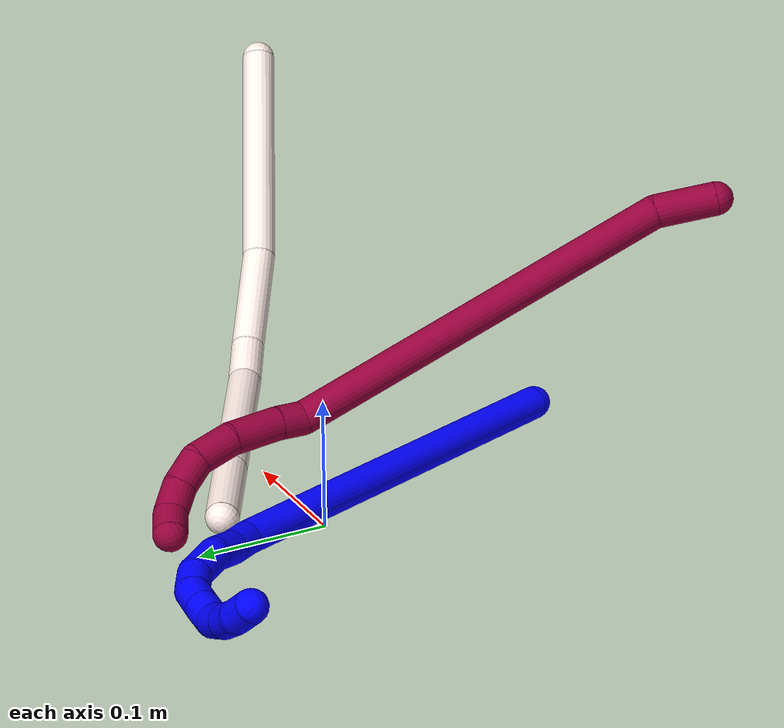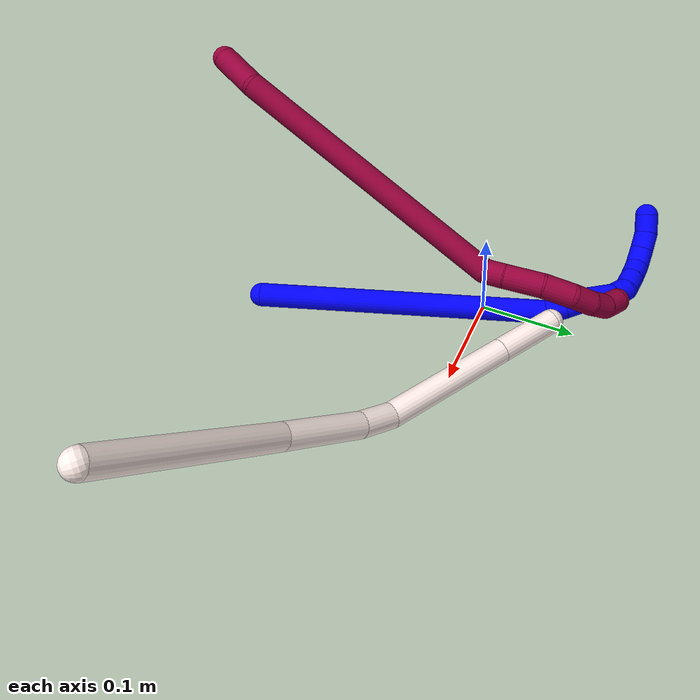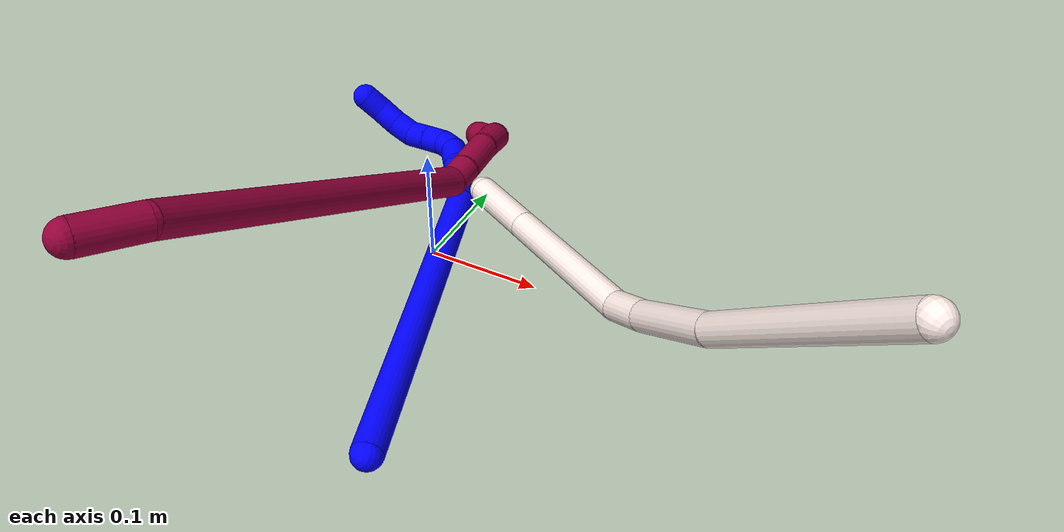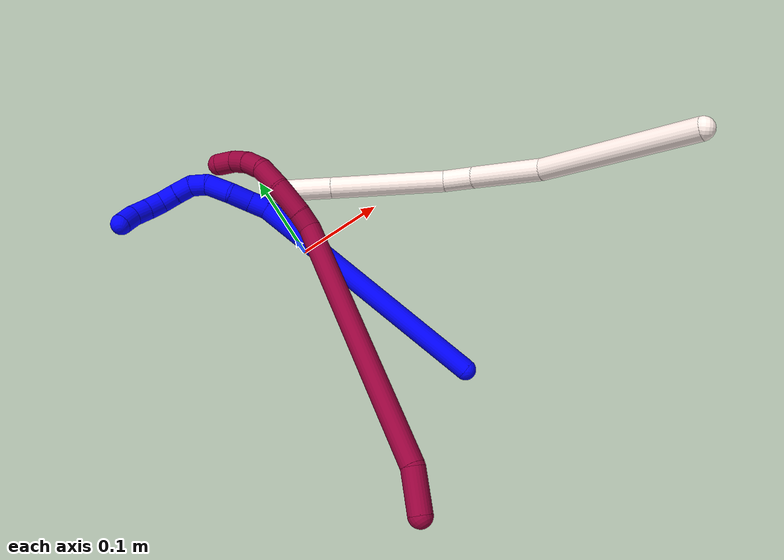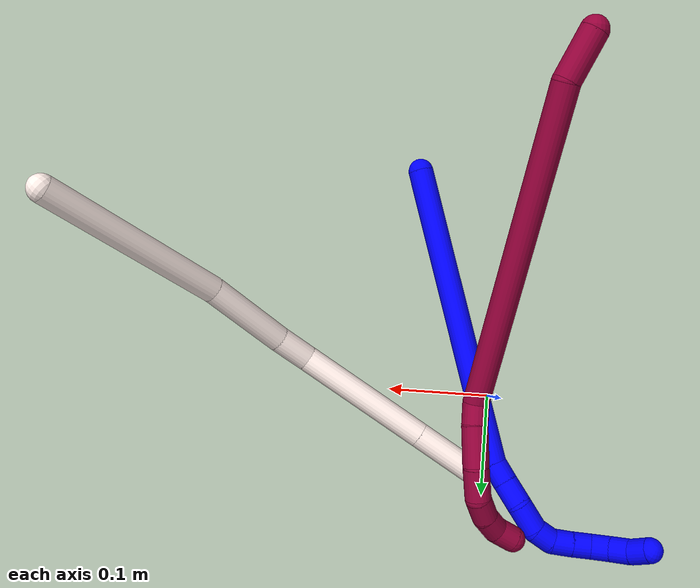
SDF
<sdf version="1.7">
 <world name="default">
  <model name="1">
   <static>0</static>
   <link name="1">
    <collision name="collision-cylinder-e_1_1_4">
     <pose>-0.035517 0.121609 -0.083028 -2.16985 -0.236684 0.442903</pose>
     <geometry><cylinder><radius>0.0125</radius><length>0.302945</length></cylinder></geometry>
     <surface>
      <friction><ode><mu>1.16</mu><mu2>1.16</mu2><slip1>0</slip1><slip2>0</slip2></ode></friction>
      <contact><ode><kp>1e+06</kp><kd>1</kd><max_vel>0</max_vel><min_depth>0.001</min_depth></ode></contact>
     </surface>
    </collision>
    <visual name="visual-cylinder-e_1_1_4">
     <pose>-0.035517 0.121609 -0.083028 -2.16985 -0.236684 0.442903</pose>
     <geometry><cylinder><radius>0.0125</radius><length>0.302945</length></cylinder></geometry>
     <material><ambient>0 0 1 1</ambient></material>
    </visual>
    <collision name="collision-cylinder-e_2_4_5">
     <pose>-0.075533 0.25246 -0.169364 -1.91444 -0.429658 0.600893</pose>
     <geometry><cylinder><radius>0.0125</radius><length>0.021595</length></cylinder></geometry>
     <surface>
      <friction><ode><mu>1.16</mu><mu2>1.16</mu2><slip1>0</slip1><slip2>0</slip2></ode></friction>
      <contact><ode><kp>1e+06</kp><kd>1</kd><max_vel>0</max_vel><min_depth>0.001</min_depth></ode></contact>
     </surface>
    </collision>
    <visual name="visual-cylinder-e_2_4_5">
     <pose>-0.075533 0.25246 -0.169364 -1.91444 -0.429658 0.600893</pose>
     <geometry><cylinder><radius>0.0125</radius><length>0.021595</length></cylinder></geometry>
     <material><ambient>0 0 1 1</ambient></material>
    </visual>
    <collision name="collision-cylinder-e_3_5_6">
     <pose>-0.084354 0.273664 -0.175131 -1.77361 -0.340303 0.415403</pose>
     <geometry><cylinder><radius>0.0125</radius><length>0.025909</length></cylinder></geometry>
     <surface>
      <friction><ode><mu>1.16</mu><mu2>1.16</mu2><slip1>0</slip1><slip2>0</slip2></ode></friction>
      <contact><ode><kp>1e+06</kp><kd>1</kd><max_vel>0</max_vel><min_depth>0.001</min_depth></ode></contact>
     </surface>
    </collision>
    <visual name="visual-cylinder-e_3_5_6">
     <pose>-0.084354 0.273664 -0.175131 -1.77361 -0.340303 0.415403</pose>
     <geometry><cylinder><radius>0.0125</radius><length>0.025909</length></cylinder></geometry>
     <material><ambient>0 0 1 1</ambient></material>
    </visual>
    <collision name="collision-cylinder-e_4_6_7">
     <pose>-0.095965 0.296572 -0.183271 -2.04942 -0.533676 0.845375</pose>
     <geometry><cylinder><radius>0.0125</radius><length>0.028649</length></cylinder></geometry>
     <surface>
      <friction><ode><mu>1.16</mu><mu2>1.16</mu2><slip1>0</slip1><slip2>0</slip2></ode></friction>
      <contact><ode><kp>1e+06</kp><kd>1</kd><max_vel>0</max_vel><min_depth>0.001</min_depth></ode></contact>
     </surface>
    </collision>
    <visual name="visual-cylinder-e_4_6_7">
     <pose>-0.095965 0.296572 -0.183271 -2.04942 -0.533676 0.845375</pose>
     <geometry><cylinder><radius>0.0125</radius><length>0.028649</length></cylinder></geometry>
     <material><ambient>0 0 1 1</ambient></material>
    </visual>
    <collision name="collision-cylinder-e_5_7_8">
     <pose>-0.111353 0.31344 -0.190656 -1.85125 -0.920506 1.16497</pose>
     <geometry><cylinder><radius>0.0125</radius><length>0.020357</length></cylinder></geometry>
     <surface>
      <friction><ode><mu>1.16</mu><mu2>1.16</mu2><slip1>0</slip1><slip2>0</slip2></ode></friction>
      <contact><ode><kp>1e+06</kp><kd>1</kd><max_vel>0</max_vel><min_depth>0.001</min_depth></ode></contact>
     </surface>
    </collision>
    <visual name="visual-cylinder-e_5_7_8">
     <pose>-0.111353 0.31344 -0.190656 -1.85125 -0.920506 1.16497</pose>
     <geometry><cylinder><radius>0.0125</radius><length>0.020357</length></cylinder></geometry>
     <material><ambient>0 0 1 1</ambient></material>
    </visual>
    <collision name="collision-cylinder-e_6_8_9">
     <pose>-0.128603 0.323142 -0.190203 -1.05191 -1.12662 0.702819</pose>
     <geometry><cylinder><radius>0.0125</radius><length>0.020264</length></cylinder></geometry>
     <surface>
      <friction><ode><mu>1.16</mu><mu2>1.16</mu2><slip1>0</slip1><slip2>0</slip2></ode></friction>
      <contact><ode><kp>1e+06</kp><kd>1</kd><max_vel>0</max_vel><min_depth>0.001</min_depth></ode></contact>
     </surface>
    </collision>
    <visual name="visual-cylinder-e_6_8_9">
     <pose>-0.128603 0.323142 -0.190203 -1.05191 -1.12662 0.702819</pose>
     <geometry><cylinder><radius>0.0125</radius><length>0.020264</length></cylinder></geometry>
     <material><ambient>0 0 1 1</ambient></material>
    </visual>
    <collision name="collision-cylinder-e_7_9_10">
     <pose>-0.146887 0.330428 -0.185575 -0.957135 -1.132 0.636792</pose>
     <geometry><cylinder><radius>0.0125</radius><length>0.020182</length></cylinder></geometry>
     <surface>
      <friction><ode><mu>1.16</mu><mu2>1.16</mu2><slip1>0</slip1><slip2>0</slip2></ode></friction>
      <contact><ode><kp>1e+06</kp><kd>1</kd><max_vel>0</max_vel><min_depth>0.001</min_depth></ode></contact>
     </surface>
    </collision>
    <visual name="visual-cylinder-e_7_9_10">
     <pose>-0.146887 0.330428 -0.185575 -0.957135 -1.132 0.636792</pose>
     <geometry><cylinder><radius>0.0125</radius><length>0.020182</length></cylinder></geometry>
     <material><ambient>0 0 1 1</ambient></material>
    </visual>
    <collision name="collision-cylinder-e_8_10_11">
     <pose>-0.162154 0.339398 -0.177384 -0.762458 -0.65929 0.272576</pose>
     <geometry><cylinder><radius>0.0125</radius><length>0.020023</length></cylinder></geometry>
     <surface>
      <friction><ode><mu>1.16</mu><mu2>1.16</mu2><slip1>0</slip1><slip2>0</slip2></ode></friction>
      <contact><ode><kp>1e+06</kp><kd>1</kd><max_vel>0</max_vel><min_depth>0.001</min_depth></ode></contact>
     </surface>
    </collision>
    <visual name="visual-cylinder-e_8_10_11">
     <pose>-0.162154 0.339398 -0.177384 -0.762458 -0.65929 0.272576</pose>
     <geometry><cylinder><radius>0.0125</radius><length>0.020023</length></cylinder></geometry>
     <material><ambient>0 0 1 1</ambient></material>
    </visual>
    <collision name="collision-cylinder-e_9_11_12">
     <pose>-0.172949 0.35081 -0.165053 -0.732743 -0.483042 0.188471</pose>
     <geometry><cylinder><radius>0.0125</radius><length>0.020076</length></cylinder></geometry>
     <surface>
      <friction><ode><mu>1.16</mu><mu2>1.16</mu2><slip1>0</slip1><slip2>0</slip2></ode></friction>
      <contact><ode><kp>1e+06</kp><kd>1</kd><max_vel>0</max_vel><min_depth>0.001</min_depth></ode></contact>
     </surface>
    </collision>
    <visual name="visual-cylinder-e_9_11_12">
     <pose>-0.172949 0.35081 -0.165053 -0.732743 -0.483042 0.188471</pose>
     <geometry><cylinder><radius>0.0125</radius><length>0.020076</length></cylinder></geometry>
     <material><ambient>0 0 1 1</ambient></material>
    </visual>
    <collision name="collision-cylinder-e_10_12_2">
     <pose>-0.180605 0.361271 -0.150039 -0.492873 -0.303936 0.077011</pose>
     <geometry><cylinder><radius>0.0125</radius><length>0.02</length></cylinder></geometry>
     <surface>
      <friction><ode><mu>1.16</mu><mu2>1.16</mu2><slip1>0</slip1><slip2>0</slip2></ode></friction>
      <contact><ode><kp>1e+06</kp><kd>1</kd><max_vel>0</max_vel><min_depth>0.001</min_depth></ode></contact>
     </surface>
    </collision>
    <visual name="visual-cylinder-e_10_12_2">
     <pose>-0.180605 0.361271 -0.150039 -0.492873 -0.303936 0.077011</pose>
     <geometry><cylinder><radius>0.0125</radius><length>0.02</length></cylinder></geometry>
     <material><ambient>0 0 1 1</ambient></material>
    </visual>
    <collision name="collision-sphere-2">
     <pose>-0.183597 0.365786 -0.141633 0 -0 0</pose>
     <geometry><sphere><radius>0.0125</radius></sphere></geometry>
     <surface>
      <friction><ode><mu>1.16</mu><mu2>1.16</mu2><slip1>0</slip1><slip2>0</slip2></ode></friction>
      <contact><ode><kp>1e+06</kp><kd>1</kd><max_vel>0</max_vel><min_depth>0.001</min_depth></ode></contact>
     </surface>
    </collision>
    <visual name="visual-sphere-2">
     <pose>-0.183597 0.365786 -0.141633 0 -0 0</pose>
     <geometry><sphere><radius>0.0125</radius></sphere></geometry>
     <material><ambient>0 0 1 1</ambient></material>
    </visual>
    <collision name="collision-sphere-12">
     <pose>-0.177612 0.356757 -0.158445 0 -0 0</pose>
     <geometry><sphere><radius>0.0125</radius></sphere></geometry>
     <surface>
      <friction><ode><mu>1.16</mu><mu2>1.16</mu2><slip1>0</slip1><slip2>0</slip2></ode></friction>
      <contact><ode><kp>1e+06</kp><kd>1</kd><max_vel>0</max_vel><min_depth>0.001</min_depth></ode></contact>
     </surface>
    </collision>
    <visual name="visual-sphere-12">
     <pose>-0.177612 0.356757 -0.158445 0 -0 0</pose>
     <geometry><sphere><radius>0.0125</radius></sphere></geometry>
     <material><ambient>0 0 1 1</ambient></material>
    </visual>
    <collision name="collision-sphere-11">
     <pose>-0.168287 0.344864 -0.171661 0 -0 0</pose>
     <geometry><sphere><radius>0.0125</radius></sphere></geometry>
     <surface>
      <friction><ode><mu>1.16</mu><mu2>1.16</mu2><slip1>0</slip1><slip2>0</slip2></ode></friction>
      <contact><ode><kp>1e+06</kp><kd>1</kd><max_vel>0</max_vel><min_depth>0.001</min_depth></ode></contact>
     </surface>
    </collision>
    <visual name="visual-sphere-11">
     <pose>-0.168287 0.344864 -0.171661 0 -0 0</pose>
     <geometry><sphere><radius>0.0125</radius></sphere></geometry>
     <material><ambient>0 0 1 1</ambient></material>
    </visual>
    <collision name="collision-sphere-10">
     <pose>-0.156022 0.333933 -0.183106 0 -0 0</pose>
     <geometry><sphere><radius>0.0125</radius></sphere></geometry>
     <surface>
      <friction><ode><mu>1.16</mu><mu2>1.16</mu2><slip1>0</slip1><slip2>0</slip2></ode></friction>
      <contact><ode><kp>1e+06</kp><kd>1</kd><max_vel>0</max_vel><min_depth>0.001</min_depth></ode></contact>
     </surface>
    </collision>
    <visual name="visual-sphere-10">
     <pose>-0.156022 0.333933 -0.183106 0 -0 0</pose>
     <geometry><sphere><radius>0.0125</radius></sphere></geometry>
     <material><ambient>0 0 1 1</ambient></material>
    </visual>
    <collision name="collision-sphere-9">
     <pose>-0.137752 0.326923 -0.188044 0 -0 0</pose>
     <geometry><sphere><radius>0.0125</radius></sphere></geometry>
     <surface>
      <friction><ode><mu>1.16</mu><mu2>1.16</mu2><slip1>0</slip1><slip2>0</slip2></ode></friction>
      <contact><ode><kp>1e+06</kp><kd>1</kd><max_vel>0</max_vel><min_depth>0.001</min_depth></ode></contact>
     </surface>
    </collision>
    <visual name="visual-sphere-9">
     <pose>-0.137752 0.326923 -0.188044 0 -0 0</pose>
     <geometry><sphere><radius>0.0125</radius></sphere></geometry>
     <material><ambient>0 0 1 1</ambient></material>
    </visual>
    <collision name="collision-sphere-4">
     <pose>-0.071035 0.243218 -0.166057 0 -0 0</pose>
     <geometry><sphere><radius>0.0125</radius></sphere></geometry>
     <surface>
      <friction><ode><mu>1.16</mu><mu2>1.16</mu2><slip1>0</slip1><slip2>0</slip2></ode></friction>
      <contact><ode><kp>1e+06</kp><kd>1</kd><max_vel>0</max_vel><min_depth>0.001</min_depth></ode></contact>
     </surface>
    </collision>
    <visual name="visual-sphere-4">
     <pose>-0.071035 0.243218 -0.166057 0 -0 0</pose>
     <geometry><sphere><radius>0.0125</radius></sphere></geometry>
     <material><ambient>0 0 1 1</ambient></material>
    </visual>
    <collision name="collision-sphere-1">
     <geometry><sphere><radius>0.0125</radius></sphere></geometry>
     <surface>
      <friction><ode><mu>1.16</mu><mu2>1.16</mu2><slip1>0</slip1><slip2>0</slip2></ode></friction>
      <contact><ode><kp>1e+06</kp><kd>1</kd><max_vel>0</max_vel><min_depth>0.001</min_depth></ode></contact>
     </surface>
    </collision>
    <visual name="visual-sphere-1">
     <geometry><sphere><radius>0.0125</radius></sphere></geometry>
     <material><ambient>0 0 1 1</ambient></material>
    </visual>
    <collision name="collision-sphere-8">
     <pose>-0.119454 0.319361 -0.192362 0 -0 0</pose>
     <geometry><sphere><radius>0.0125</radius></sphere></geometry>
     <surface>
      <friction><ode><mu>1.16</mu><mu2>1.16</mu2><slip1>0</slip1><slip2>0</slip2></ode></friction>
      <contact><ode><kp>1e+06</kp><kd>1</kd><max_vel>0</max_vel><min_depth>0.001</min_depth></ode></contact>
     </surface>
    </collision>
    <visual name="visual-sphere-8">
     <pose>-0.119454 0.319361 -0.192362 0 -0 0</pose>
     <geometry><sphere><radius>0.0125</radius></sphere></geometry>
     <material><ambient>0 0 1 1</ambient></material>
    </visual>
    <collision name="collision-sphere-5">
     <pose>-0.08003 0.261702 -0.172671 0 -0 0</pose>
     <geometry><sphere><radius>0.0125</radius></sphere></geometry>
     <surface>
      <friction><ode><mu>1.16</mu><mu2>1.16</mu2><slip1>0</slip1><slip2>0</slip2></ode></friction>
      <contact><ode><kp>1e+06</kp><kd>1</kd><max_vel>0</max_vel><min_depth>0.001</min_depth></ode></contact>
     </surface>
    </collision>
    <visual name="visual-sphere-5">
     <pose>-0.08003 0.261702 -0.172671 0 -0 0</pose>
     <geometry><sphere><radius>0.0125</radius></sphere></geometry>
     <material><ambient>0 0 1 1</ambient></material>
    </visual>
    <collision name="collision-sphere-6">
     <pose>-0.088678 0.285625 -0.177591 0 -0 0</pose>
     <geometry><sphere><radius>0.0125</radius></sphere></geometry>
     <surface>
      <friction><ode><mu>1.16</mu><mu2>1.16</mu2><slip1>0</slip1><slip2>0</slip2></ode></friction>
      <contact><ode><kp>1e+06</kp><kd>1</kd><max_vel>0</max_vel><min_depth>0.001</min_depth></ode></contact>
     </surface>
    </collision>
    <visual name="visual-sphere-6">
     <pose>-0.088678 0.285625 -0.177591 0 -0 0</pose>
     <geometry><sphere><radius>0.0125</radius></sphere></geometry>
     <material><ambient>0 0 1 1</ambient></material>
    </visual>
    <collision name="collision-sphere-7">
     <pose>-0.103252 0.307518 -0.188951 0 -0 0</pose>
     <geometry><sphere><radius>0.0125</radius></sphere></geometry>
     <surface>
      <friction><ode><mu>1.16</mu><mu2>1.16</mu2><slip1>0</slip1><slip2>0</slip2></ode></friction>
      <contact><ode><kp>1e+06</kp><kd>1</kd><max_vel>0</max_vel><min_depth>0.001</min_depth></ode></contact>
     </surface>
    </collision>
    <visual name="visual-sphere-7">
     <pose>-0.103252 0.307518 -0.188951 0 -0 0</pose>
     <geometry><sphere><radius>0.0125</radius></sphere></geometry>
     <material><ambient>0 0 1 1</ambient></material>
    </visual>
    <inertial>
     <pose>-0.070988 0.197082 -0.119891 0 -0 0</pose>
     <mass>0.5</mass>
     <inertia>
      <ixx>0.003018</ixx>
      <ixy>0</ixy>
      <ixz>0</ixz>
      <iyy>1.9e-05</iyy>
      <iyz>0</iyz>
      <izz>-0.001336</izz>
     </inertia>
    </inertial>
   </link>
   <pose>0.083026 -0.222425 0.013651 0.721413 -0.495531 0.043967</pose>
  </model>
  <model name="8">
   <static>0</static>
   <link name="8">
    <collision name="collision-cylinder-e_1_1_4">
     <pose>-0.003092 -0.007889 -0.021313 2.78709 -0.135222 -0.722826</pose>
     <geometry><cylinder><radius>0.0125</radius><length>0.045872</length></cylinder></geometry>
     <surface>
      <friction><ode><mu>1.16</mu><mu2>1.16</mu2><slip1>0</slip1><slip2>0</slip2></ode></friction>
      <contact><ode><kp>1e+06</kp><kd>1</kd><max_vel>0</max_vel><min_depth>0.001</min_depth></ode></contact>
     </surface>
    </collision>
    <visual name="visual-cylinder-e_1_1_4">
     <pose>-0.003092 -0.007889 -0.021313 2.78709 -0.135222 -0.722826</pose>
     <geometry><cylinder><radius>0.0125</radius><length>0.045872</length></cylinder></geometry>
     <material><ambient>0.584314 0 0.227451 1</ambient></material>
    </visual>
    <collision name="collision-cylinder-e_2_4_5">
     <pose>-0.034032 -0.017403 -0.188533 3.13045 -0.188585 -3.02396</pose>
     <geometry><cylinder><radius>0.0125</radius><length>0.297097</length></cylinder></geometry>
     <surface>
      <friction><ode><mu>1.16</mu><mu2>1.16</mu2><slip1>0</slip1><slip2>0</slip2></ode></friction>
      <contact><ode><kp>1e+06</kp><kd>1</kd><max_vel>0</max_vel><min_depth>0.001</min_depth></ode></contact>
     </surface>
    </collision>
    <visual name="visual-cylinder-e_2_4_5">
     <pose>-0.034032 -0.017403 -0.188533 3.13045 -0.188585 -3.02396</pose>
     <geometry><cylinder><radius>0.0125</radius><length>0.297097</length></cylinder></geometry>
     <material><ambient>0.584314 0 0.227451 1</ambient></material>
    </visual>
    <collision name="collision-cylinder-e_3_5_6">
     <pose>-0.058904 -0.020063 -0.344376 3.03776 0.2895 2.45675</pose>
     <geometry><cylinder><radius>0.0125</radius><length>0.020851</length></cylinder></geometry>
     <surface>
      <friction><ode><mu>1.16</mu><mu2>1.16</mu2><slip1>0</slip1><slip2>0</slip2></ode></friction>
      <contact><ode><kp>1e+06</kp><kd>1</kd><max_vel>0</max_vel><min_depth>0.001</min_depth></ode></contact>
     </surface>
    </collision>
    <visual name="visual-cylinder-e_3_5_6">
     <pose>-0.058904 -0.020063 -0.344376 3.03776 0.2895 2.45675</pose>
     <geometry><cylinder><radius>0.0125</radius><length>0.020851</length></cylinder></geometry>
     <material><ambient>0.584314 0 0.227451 1</ambient></material>
    </visual>
    <collision name="collision-cylinder-e_4_6_7">
     <pose>-0.050808 -0.020779 -0.373099 -3.12455 0.266078 -3.01441</pose>
     <geometry><cylinder><radius>0.0125</radius><length>0.038945</length></cylinder></geometry>
     <surface>
      <friction><ode><mu>1.16</mu><mu2>1.16</mu2><slip1>0</slip1><slip2>0</slip2></ode></friction>
      <contact><ode><kp>1e+06</kp><kd>1</kd><max_vel>0</max_vel><min_depth>0.001</min_depth></ode></contact>
     </surface>
    </collision>
    <visual name="visual-cylinder-e_4_6_7">
     <pose>-0.050808 -0.020779 -0.373099 -3.12455 0.266078 -3.01441</pose>
     <geometry><cylinder><radius>0.0125</radius><length>0.038945</length></cylinder></geometry>
     <material><ambient>0.584314 0 0.227451 1</ambient></material>
    </visual>
    <collision name="collision-cylinder-e_5_7_8">
     <pose>-0.04395 -0.017998 -0.406852 -2.97866 0.114046 -1.22034</pose>
     <geometry><cylinder><radius>0.0125</radius><length>0.030537</length></cylinder></geometry>
     <surface>
      <friction><ode><mu>1.16</mu><mu2>1.16</mu2><slip1>0</slip1><slip2>0</slip2></ode></friction>
      <contact><ode><kp>1e+06</kp><kd>1</kd><max_vel>0</max_vel><min_depth>0.001</min_depth></ode></contact>
     </surface>
    </collision>
    <visual name="visual-cylinder-e_5_7_8">
     <pose>-0.04395 -0.017998 -0.406852 -2.97866 0.114046 -1.22034</pose>
     <geometry><cylinder><radius>0.0125</radius><length>0.030537</length></cylinder></geometry>
     <material><ambient>0.584314 0 0.227451 1</ambient></material>
    </visual>
    <collision name="collision-cylinder-e_6_8_9">
     <pose>-0.043079 -0.009371 -0.431963 -2.59535 -0.072857 0.258753</pose>
     <geometry><cylinder><radius>0.0125</radius><length>0.023803</length></cylinder></geometry>
     <surface>
      <friction><ode><mu>1.16</mu><mu2>1.16</mu2><slip1>0</slip1><slip2>0</slip2></ode></friction>
      <contact><ode><kp>1e+06</kp><kd>1</kd><max_vel>0</max_vel><min_depth>0.001</min_depth></ode></contact>
     </surface>
    </collision>
    <visual name="visual-cylinder-e_6_8_9">
     <pose>-0.043079 -0.009371 -0.431963 -2.59535 -0.072857 0.258753</pose>
     <geometry><cylinder><radius>0.0125</radius><length>0.023803</length></cylinder></geometry>
     <material><ambient>0.584314 0 0.227451 1</ambient></material>
    </visual>
    <collision name="collision-cylinder-e_7_9_10">
     <pose>-0.044572 0.004682 -0.449879 -2.34898 -0.056583 0.135054</pose>
     <geometry><cylinder><radius>0.0125</radius><length>0.022184</length></cylinder></geometry>
     <surface>
      <friction><ode><mu>1.16</mu><mu2>1.16</mu2><slip1>0</slip1><slip2>0</slip2></ode></friction>
      <contact><ode><kp>1e+06</kp><kd>1</kd><max_vel>0</max_vel><min_depth>0.001</min_depth></ode></contact>
     </surface>
    </collision>
    <visual name="visual-cylinder-e_7_9_10">
     <pose>-0.044572 0.004682 -0.449879 -2.34898 -0.056583 0.135054</pose>
     <geometry><cylinder><radius>0.0125</radius><length>0.022184</length></cylinder></geometry>
     <material><ambient>0.584314 0 0.227451 1</ambient></material>
    </visual>
    <collision name="collision-cylinder-e_8_10_2">
     <pose>-0.042471 0.021417 -0.462289 -2.05339 0.266652 -0.436308</pose>
     <geometry><cylinder><radius>0.0125</radius><length>0.020711</length></cylinder></geometry>
     <surface>
      <friction><ode><mu>1.16</mu><mu2>1.16</mu2><slip1>0</slip1><slip2>0</slip2></ode></friction>
      <contact><ode><kp>1e+06</kp><kd>1</kd><max_vel>0</max_vel><min_depth>0.001</min_depth></ode></contact>
     </surface>
    </collision>
    <visual name="visual-cylinder-e_8_10_2">
     <pose>-0.042471 0.021417 -0.462289 -2.05339 0.266652 -0.436308</pose>
     <geometry><cylinder><radius>0.0125</radius><length>0.020711</length></cylinder></geometry>
     <material><ambient>0.584314 0 0.227451 1</ambient></material>
    </visual>
    <collision name="collision-sphere-2">
     <pose>-0.039742 0.030266 -0.466925 0 -0 0</pose>
     <geometry><sphere><radius>0.0125</radius></sphere></geometry>
     <surface>
      <friction><ode><mu>1.16</mu><mu2>1.16</mu2><slip1>0</slip1><slip2>0</slip2></ode></friction>
      <contact><ode><kp>1e+06</kp><kd>1</kd><max_vel>0</max_vel><min_depth>0.001</min_depth></ode></contact>
     </surface>
    </collision>
    <visual name="visual-sphere-2">
     <pose>-0.039742 0.030266 -0.466925 0 -0 0</pose>
     <geometry><sphere><radius>0.0125</radius></sphere></geometry>
     <material><ambient>0.584314 0 0.227451 1</ambient></material>
    </visual>
    <collision name="collision-sphere-10">
     <pose>-0.0452 0.012568 -0.457653 0 -0 0</pose>
     <geometry><sphere><radius>0.0125</radius></sphere></geometry>
     <surface>
      <friction><ode><mu>1.16</mu><mu2>1.16</mu2><slip1>0</slip1><slip2>0</slip2></ode></friction>
      <contact><ode><kp>1e+06</kp><kd>1</kd><max_vel>0</max_vel><min_depth>0.001</min_depth></ode></contact>
     </surface>
    </collision>
    <visual name="visual-sphere-10">
     <pose>-0.0452 0.012568 -0.457653 0 -0 0</pose>
     <geometry><sphere><radius>0.0125</radius></sphere></geometry>
     <material><ambient>0.584314 0 0.227451 1</ambient></material>
    </visual>
    <collision name="collision-sphere-9">
     <pose>-0.043945 -0.003205 -0.442105 0 -0 0</pose>
     <geometry><sphere><radius>0.0125</radius></sphere></geometry>
     <surface>
      <friction><ode><mu>1.16</mu><mu2>1.16</mu2><slip1>0</slip1><slip2>0</slip2></ode></friction>
      <contact><ode><kp>1e+06</kp><kd>1</kd><max_vel>0</max_vel><min_depth>0.001</min_depth></ode></contact>
     </surface>
    </collision>
    <visual name="visual-sphere-9">
     <pose>-0.043945 -0.003205 -0.442105 0 -0 0</pose>
     <geometry><sphere><radius>0.0125</radius></sphere></geometry>
     <material><ambient>0.584314 0 0.227451 1</ambient></material>
    </visual>
    <collision name="collision-sphere-4">
     <pose>-0.006184 -0.015778 -0.042627 0 -0 0</pose>
     <geometry><sphere><radius>0.0125</radius></sphere></geometry>
     <surface>
      <friction><ode><mu>1.16</mu><mu2>1.16</mu2><slip1>0</slip1><slip2>0</slip2></ode></friction>
      <contact><ode><kp>1e+06</kp><kd>1</kd><max_vel>0</max_vel><min_depth>0.001</min_depth></ode></contact>
     </surface>
    </collision>
    <visual name="visual-sphere-4">
     <pose>-0.006184 -0.015778 -0.042627 0 -0 0</pose>
     <geometry><sphere><radius>0.0125</radius></sphere></geometry>
     <material><ambient>0.584314 0 0.227451 1</ambient></material>
    </visual>
    <collision name="collision-sphere-1">
     <geometry><sphere><radius>0.0125</radius></sphere></geometry>
     <surface>
      <friction><ode><mu>1.16</mu><mu2>1.16</mu2><slip1>0</slip1><slip2>0</slip2></ode></friction>
      <contact><ode><kp>1e+06</kp><kd>1</kd><max_vel>0</max_vel><min_depth>0.001</min_depth></ode></contact>
     </surface>
    </collision>
    <visual name="visual-sphere-1">
     <geometry><sphere><radius>0.0125</radius></sphere></geometry>
     <material><ambient>0.584314 0 0.227451 1</ambient></material>
    </visual>
    <collision name="collision-sphere-8">
     <pose>-0.042212 -0.015537 -0.42182 0 -0 0</pose>
     <geometry><sphere><radius>0.0125</radius></sphere></geometry>
     <surface>
      <friction><ode><mu>1.16</mu><mu2>1.16</mu2><slip1>0</slip1><slip2>0</slip2></ode></friction>
      <contact><ode><kp>1e+06</kp><kd>1</kd><max_vel>0</max_vel><min_depth>0.001</min_depth></ode></contact>
     </surface>
    </collision>
    <visual name="visual-sphere-8">
     <pose>-0.042212 -0.015537 -0.42182 0 -0 0</pose>
     <geometry><sphere><radius>0.0125</radius></sphere></geometry>
     <material><ambient>0.584314 0 0.227451 1</ambient></material>
    </visual>
    <collision name="collision-sphere-5">
     <pose>-0.061881 -0.019028 -0.334438 0 -0 0</pose>
     <geometry><sphere><radius>0.0125</radius></sphere></geometry>
     <surface>
      <friction><ode><mu>1.16</mu><mu2>1.16</mu2><slip1>0</slip1><slip2>0</slip2></ode></friction>
      <contact><ode><kp>1e+06</kp><kd>1</kd><max_vel>0</max_vel><min_depth>0.001</min_depth></ode></contact>
     </surface>
    </collision>
    <visual name="visual-sphere-5">
     <pose>-0.061881 -0.019028 -0.334438 0 -0 0</pose>
     <geometry><sphere><radius>0.0125</radius></sphere></geometry>
     <material><ambient>0.584314 0 0.227451 1</ambient></material>
    </visual>
    <collision name="collision-sphere-6">
     <pose>-0.055928 -0.021099 -0.354314 0 -0 0</pose>
     <geometry><sphere><radius>0.0125</radius></sphere></geometry>
     <surface>
      <friction><ode><mu>1.16</mu><mu2>1.16</mu2><slip1>0</slip1><slip2>0</slip2></ode></friction>
      <contact><ode><kp>1e+06</kp><kd>1</kd><max_vel>0</max_vel><min_depth>0.001</min_depth></ode></contact>
     </surface>
    </collision>
    <visual name="visual-sphere-6">
     <pose>-0.055928 -0.021099 -0.354314 0 -0 0</pose>
     <geometry><sphere><radius>0.0125</radius></sphere></geometry>
     <material><ambient>0.584314 0 0.227451 1</ambient></material>
    </visual>
    <collision name="collision-sphere-7">
     <pose>-0.045687 -0.020459 -0.391884 0 -0 0</pose>
     <geometry><sphere><radius>0.0125</radius></sphere></geometry>
     <surface>
      <friction><ode><mu>1.16</mu><mu2>1.16</mu2><slip1>0</slip1><slip2>0</slip2></ode></friction>
      <contact><ode><kp>1e+06</kp><kd>1</kd><max_vel>0</max_vel><min_depth>0.001</min_depth></ode></contact>
     </surface>
    </collision>
    <visual name="visual-sphere-7">
     <pose>-0.045687 -0.020459 -0.391884 0 -0 0</pose>
     <geometry><sphere><radius>0.0125</radius></sphere></geometry>
     <material><ambient>0.584314 0 0.227451 1</ambient></material>
    </visual>
    <inertial>
     <pose>-0.035391 -0.01397 -0.241924 0 -0 0</pose>
     <mass>0.5</mass>
     <inertia>
      <ixx>-0.002403</ixx>
      <ixy>0</ixy>
      <ixz>0</ixz>
      <iyy>0.001918</iyy>
      <iyz>0</iyz>
      <izz>0.000397</izz>
     </inertia>
    </inertial>
   </link>
   <pose>-0.041366 -0.301872 0.212199 -1.05646 -0.99547 2.65223</pose>
  </model>
  <model name="11">
   <static>0</static>
   <link name="11">
    <collision name="collision-cylinder-e_1_1_4">
     <pose>-0.034125 -0.038566 -0.07297 2.65539 -0.392059 -1.35033</pose>
     <geometry><cylinder><radius>0.0125</radius><length>0.178622</length></cylinder></geometry>
     <surface>
      <friction><ode><mu>1.16</mu><mu2>1.16</mu2><slip1>0</slip1><slip2>0</slip2></ode></friction>
      <contact><ode><kp>1e+06</kp><kd>1</kd><max_vel>0</max_vel><min_depth>0.001</min_depth></ode></contact>
     </surface>
    </collision>
    <visual name="visual-cylinder-e_1_1_4">
     <pose>-0.034125 -0.038566 -0.07297 2.65539 -0.392059 -1.35033</pose>
     <geometry><cylinder><radius>0.0125</radius><length>0.178622</length></cylinder></geometry>
     <material><ambient>1 0.933333 0.909804 1</ambient></material>
    </visual>
    <collision name="collision-cylinder-e_2_4_5">
     <pose>-0.07908 -0.092717 -0.18338 2.74715 -0.260969 -1.1622</pose>
     <geometry><cylinder><radius>0.0125</radius><length>0.083952</length></cylinder></geometry>
     <surface>
      <friction><ode><mu>1.16</mu><mu2>1.16</mu2><slip1>0</slip1><slip2>0</slip2></ode></friction>
      <contact><ode><kp>1e+06</kp><kd>1</kd><max_vel>0</max_vel><min_depth>0.001</min_depth></ode></contact>
     </surface>
    </collision>
    <visual name="visual-cylinder-e_2_4_5">
     <pose>-0.07908 -0.092717 -0.18338 2.74715 -0.260969 -1.1622</pose>
     <geometry><cylinder><radius>0.0125</radius><length>0.083952</length></cylinder></geometry>
     <material><ambient>1 0.933333 0.909804 1</ambient></material>
    </visual>
    <collision name="collision-cylinder-e_3_5_6">
     <pose>-0.094294 -0.112387 -0.237708 2.90427 -0.247107 -1.61157</pose>
     <geometry><cylinder><radius>0.0125</radius><length>0.035839</length></cylinder></geometry>
     <surface>
      <friction><ode><mu>1.16</mu><mu2>1.16</mu2><slip1>0</slip1><slip2>0</slip2></ode></friction>
      <contact><ode><kp>1e+06</kp><kd>1</kd><max_vel>0</max_vel><min_depth>0.001</min_depth></ode></contact>
     </surface>
    </collision>
    <visual name="visual-cylinder-e_3_5_6">
     <pose>-0.094294 -0.112387 -0.237708 2.90427 -0.247107 -1.61157</pose>
     <geometry><cylinder><radius>0.0125</radius><length>0.035839</length></cylinder></geometry>
     <material><ambient>1 0.933333 0.909804 1</ambient></material>
    </visual>
    <collision name="collision-cylinder-e_4_6_7">
     <pose>-0.105642 -0.109863 -0.320508 -3.04165 -0.104755 1.61786</pose>
     <geometry><cylinder><radius>0.0125</radius><length>0.133214</length></cylinder></geometry>
     <surface>
      <friction><ode><mu>1.16</mu><mu2>1.16</mu2><slip1>0</slip1><slip2>0</slip2></ode></friction>
      <contact><ode><kp>1e+06</kp><kd>1</kd><max_vel>0</max_vel><min_depth>0.001</min_depth></ode></contact>
     </surface>
    </collision>
    <visual name="visual-cylinder-e_4_6_7">
     <pose>-0.105642 -0.109863 -0.320508 -3.04165 -0.104755 1.61786</pose>
     <geometry><cylinder><radius>0.0125</radius><length>0.133214</length></cylinder></geometry>
     <material><ambient>1 0.933333 0.909804 1</ambient></material>
    </visual>
    <collision name="collision-cylinder-e_5_7_2">
     <pose>-0.116128 -0.099871 -0.420255 -3.04196 -0.103193 1.60594</pose>
     <geometry><cylinder><radius>0.0125</radius><length>0.068373</length></cylinder></geometry>
     <surface>
      <friction><ode><mu>1.16</mu><mu2>1.16</mu2><slip1>0</slip1><slip2>0</slip2></ode></friction>
      <contact><ode><kp>1e+06</kp><kd>1</kd><max_vel>0</max_vel><min_depth>0.001</min_depth></ode></contact>
     </surface>
    </collision>
    <visual name="visual-cylinder-e_5_7_2">
     <pose>-0.116128 -0.099871 -0.420255 -3.04196 -0.103193 1.60594</pose>
     <geometry><cylinder><radius>0.0125</radius><length>0.068373</length></cylinder></geometry>
     <material><ambient>1 0.933333 0.909804 1</ambient></material>
    </visual>
    <collision name="collision-sphere-2">
     <pose>-0.11965 -0.096488 -0.454091 0 -0 0</pose>
     <geometry><sphere><radius>0.0125</radius></sphere></geometry>
     <surface>
      <friction><ode><mu>1.16</mu><mu2>1.16</mu2><slip1>0</slip1><slip2>0</slip2></ode></friction>
      <contact><ode><kp>1e+06</kp><kd>1</kd><max_vel>0</max_vel><min_depth>0.001</min_depth></ode></contact>
     </surface>
    </collision>
    <visual name="visual-sphere-2">
     <pose>-0.11965 -0.096488 -0.454091 0 -0 0</pose>
     <geometry><sphere><radius>0.0125</radius></sphere></geometry>
     <material><ambient>1 0.933333 0.909804 1</ambient></material>
    </visual>
    <collision name="collision-sphere-7">
     <pose>-0.112606 -0.103253 -0.386419 0 -0 0</pose>
     <geometry><sphere><radius>0.0125</radius></sphere></geometry>
     <surface>
      <friction><ode><mu>1.16</mu><mu2>1.16</mu2><slip1>0</slip1><slip2>0</slip2></ode></friction>
      <contact><ode><kp>1e+06</kp><kd>1</kd><max_vel>0</max_vel><min_depth>0.001</min_depth></ode></contact>
     </surface>
    </collision>
    <visual name="visual-sphere-7">
     <pose>-0.112606 -0.103253 -0.386419 0 -0 0</pose>
     <geometry><sphere><radius>0.0125</radius></sphere></geometry>
     <material><ambient>1 0.933333 0.909804 1</ambient></material>
    </visual>
    <collision name="collision-sphere-6">
     <pose>-0.098677 -0.116472 -0.254596 0 -0 0</pose>
     <geometry><sphere><radius>0.0125</radius></sphere></geometry>
     <surface>
      <friction><ode><mu>1.16</mu><mu2>1.16</mu2><slip1>0</slip1><slip2>0</slip2></ode></friction>
      <contact><ode><kp>1e+06</kp><kd>1</kd><max_vel>0</max_vel><min_depth>0.001</min_depth></ode></contact>
     </surface>
    </collision>
    <visual name="visual-sphere-6">
     <pose>-0.098677 -0.116472 -0.254596 0 -0 0</pose>
     <geometry><sphere><radius>0.0125</radius></sphere></geometry>
     <material><ambient>1 0.933333 0.909804 1</ambient></material>
    </visual>
    <collision name="collision-sphere-5">
     <pose>-0.089911 -0.108302 -0.22082 0 -0 0</pose>
     <geometry><sphere><radius>0.0125</radius></sphere></geometry>
     <surface>
      <friction><ode><mu>1.16</mu><mu2>1.16</mu2><slip1>0</slip1><slip2>0</slip2></ode></friction>
      <contact><ode><kp>1e+06</kp><kd>1</kd><max_vel>0</max_vel><min_depth>0.001</min_depth></ode></contact>
     </surface>
    </collision>
    <visual name="visual-sphere-5">
     <pose>-0.089911 -0.108302 -0.22082 0 -0 0</pose>
     <geometry><sphere><radius>0.0125</radius></sphere></geometry>
     <material><ambient>1 0.933333 0.909804 1</ambient></material>
    </visual>
    <collision name="collision-sphere-1">
     <geometry><sphere><radius>0.0125</radius></sphere></geometry>
     <surface>
      <friction><ode><mu>1.16</mu><mu2>1.16</mu2><slip1>0</slip1><slip2>0</slip2></ode></friction>
      <contact><ode><kp>1e+06</kp><kd>1</kd><max_vel>0</max_vel><min_depth>0.001</min_depth></ode></contact>
     </surface>
    </collision>
    <visual name="visual-sphere-1">
     <geometry><sphere><radius>0.0125</radius></sphere></geometry>
     <material><ambient>1 0.933333 0.909804 1</ambient></material>
    </visual>
    <collision name="collision-sphere-4">
     <pose>-0.06825 -0.077132 -0.145939 0 -0 0</pose>
     <geometry><sphere><radius>0.0125</radius></sphere></geometry>
     <surface>
      <friction><ode><mu>1.16</mu><mu2>1.16</mu2><slip1>0</slip1><slip2>0</slip2></ode></friction>
      <contact><ode><kp>1e+06</kp><kd>1</kd><max_vel>0</max_vel><min_depth>0.001</min_depth></ode></contact>
     </surface>
    </collision>
    <visual name="visual-sphere-4">
     <pose>-0.06825 -0.077132 -0.145939 0 -0 0</pose>
     <geometry><sphere><radius>0.0125</radius></sphere></geometry>
     <material><ambient>1 0.933333 0.909804 1</ambient></material>
    </visual>
    <inertial>
     <pose>-0.076254 -0.080328 -0.216757 0 -0 0</pose>
     <mass>0.5</mass>
     <inertia>
      <ixx>-0.000159</ixx>
      <ixy>0</ixy>
      <ixz>0</ixz>
      <iyy>-0.000274</iyy>
      <iyz>0</iyz>
      <izz>0.000394</izz>
     </inertia>
    </inertial>
   </link>
   <pose>0.391951 -0.142786 0.209013 1.45191 -0.452526 0.953683</pose>
  </model>
 </world>
</sdf>
